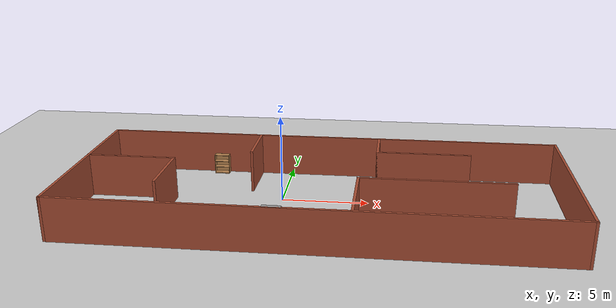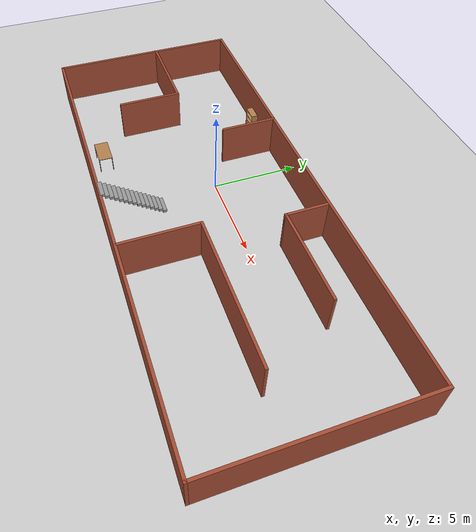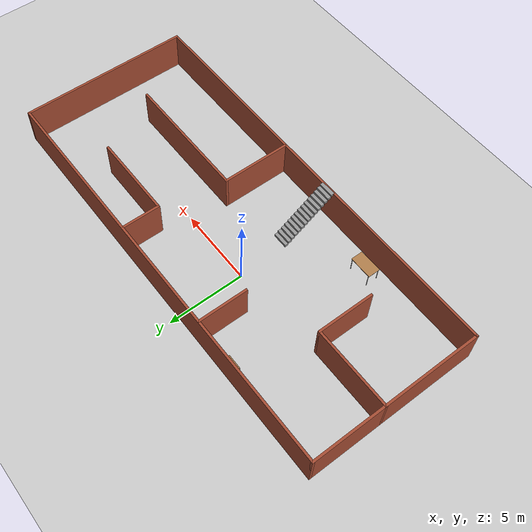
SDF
<sdf version="1.7">
 <world name="default">
  <light name="sun" type="directional">
   <pose>0 0 10 0 -0 0</pose>
   <diffuse>0.8 0.8 0.8 1</diffuse>
   <specular>0.2 0.2 0.2 1</specular>
   <attenuation>
    <range>1000</range>
    <constant>0.9</constant>
    <linear>0.01</linear>
    <quadratic>0.001</quadratic>
   </attenuation>
   <direction>-0.5 0.1 -0.9</direction>
   <spot><inner_angle>0</inner_angle><outer_angle>0</outer_angle><falloff>0</falloff></spot>
  </light>
  <model name="ground_plane">
   <static>1</static>
   <link name="link">
    <collision name="collision">
     <geometry><plane><normal>0 0 1</normal><size>100 100</size></plane></geometry>
     <surface><friction><ode><mu>100</mu><mu2>50</mu2></ode></friction></surface>
    </collision>
    <visual name="visual">
     <cast_shadows>0</cast_shadows>
     <geometry><plane><normal>0 0 1</normal><size>100 100</size></plane></geometry>
     <material>
      <script><uri>file://media/materials/scripts/gazebo.material</uri><name>Gazebo/Grey</name></script>
     </material>
    </visual>
   </link>
  </model>
  <gravity>0 0 -9.8</gravity>
  <magnetic_field>6e-06 2.3e-05 -4.2e-05</magnetic_field>
  <atmosphere type="adiabatic"/>
  <physics type="ode">
   <max_step_size>0.001</max_step_size>
   <real_time_factor>1</real_time_factor>
   <real_time_update_rate>1000</real_time_update_rate>
  </physics>
  <scene><ambient>0.4 0.4 0.4 1</ambient><background>0.7 0.7 0.7 1</background><shadows>1</shadows></scene>
  <audio><device>default</device></audio>
  <spherical_coordinates>
   <surface_model>EARTH_WGS84</surface_model>
   <latitude_deg>0</latitude_deg>
   <longitude_deg>0</longitude_deg>
   <elevation>0</elevation>
   <heading_deg>0</heading_deg>
  </spherical_coordinates>
  <model name="room">
   <pose>2.34999 -1.2148 0 0 -0 0</pose>
   <link name="Stairs_0">
    <visual name="Stairs_0_Visual_0">
     <pose>-1.80242 -2.16359 0.083333 0 -0 0</pose>
     <geometry><box><size>1 0.233333 0.166667</size></box></geometry>
     <material>
      <script><uri>file://media/materials/scripts/gazebo.material</uri><name>Gazebo/Grey</name></script>
      <ambient>1 1 1 1</ambient>
     </material>
     <meta><layer>0</layer></meta>
    </visual>
    <collision name="Stairs_0_Collision_0">
     <geometry><box><size>1 0.233333 0.166667</size></box></geometry>
     <pose>-1.80242 -2.16359 0.083333 0 -0 0</pose>
    </collision>
    <visual name="Stairs_0_Visual_1">
     <pose>-1.80242 -2.39692 0.25 0 -0 0</pose>
     <geometry><box><size>1 0.233333 0.166667</size></box></geometry>
     <material>
      <script><uri>file://media/materials/scripts/gazebo.material</uri><name>Gazebo/Grey</name></script>
      <ambient>1 1 1 1</ambient>
     </material>
     <meta><layer>0</layer></meta>
    </visual>
    <collision name="Stairs_0_Collision_1">
     <geometry><box><size>1 0.233333 0.166667</size></box></geometry>
     <pose>-1.80242 -2.39692 0.25 0 -0 0</pose>
    </collision>
    <visual name="Stairs_0_Visual_2">
     <pose>-1.80242 -2.63026 0.416667 0 -0 0</pose>
     <geometry><box><size>1 0.233333 0.166667</size></box></geometry>
     <material>
      <script><uri>file://media/materials/scripts/gazebo.material</uri><name>Gazebo/Grey</name></script>
      <ambient>1 1 1 1</ambient>
     </material>
     <meta><layer>0</layer></meta>
    </visual>
    <collision name="Stairs_0_Collision_2">
     <geometry><box><size>1 0.233333 0.166667</size></box></geometry>
     <pose>-1.80242 -2.63026 0.416667 0 -0 0</pose>
    </collision>
    <visual name="Stairs_0_Visual_3">
     <pose>-1.80242 -2.86359 0.583333 0 -0 0</pose>
     <geometry><box><size>1 0.233333 0.166667</size></box></geometry>
     <material>
      <script><uri>file://media/materials/scripts/gazebo.material</uri><name>Gazebo/Grey</name></script>
      <ambient>1 1 1 1</ambient>
     </material>
     <meta><layer>0</layer></meta>
    </visual>
    <collision name="Stairs_0_Collision_3">
     <geometry><box><size>1 0.233333 0.166667</size></box></geometry>
     <pose>-1.80242 -2.86359 0.583333 0 -0 0</pose>
    </collision>
    <visual name="Stairs_0_Visual_4">
     <pose>-1.80242 -3.09692 0.75 0 -0 0</pose>
     <geometry><box><size>1 0.233333 0.166667</size></box></geometry>
     <material>
      <script><uri>file://media/materials/scripts/gazebo.material</uri><name>Gazebo/Grey</name></script>
      <ambient>1 1 1 1</ambient>
     </material>
     <meta><layer>0</layer></meta>
    </visual>
    <collision name="Stairs_0_Collision_4">
     <geometry><box><size>1 0.233333 0.166667</size></box></geometry>
     <pose>-1.80242 -3.09692 0.75 0 -0 0</pose>
    </collision>
    <visual name="Stairs_0_Visual_5">
     <pose>-1.80242 -3.33026 0.916667 0 -0 0</pose>
     <geometry><box><size>1 0.233333 0.166667</size></box></geometry>
     <material>
      <script><uri>file://media/materials/scripts/gazebo.material</uri><name>Gazebo/Grey</name></script>
      <ambient>1 1 1 1</ambient>
     </material>
     <meta><layer>0</layer></meta>
    </visual>
    <collision name="Stairs_0_Collision_5">
     <geometry><box><size>1 0.233333 0.166667</size></box></geometry>
     <pose>-1.80242 -3.33026 0.916667 0 -0 0</pose>
    </collision>
    <visual name="Stairs_0_Visual_6">
     <pose>-1.80242 -3.56359 1.08333 0 -0 0</pose>
     <geometry><box><size>1 0.233333 0.166667</size></box></geometry>
     <material>
      <script><uri>file://media/materials/scripts/gazebo.material</uri><name>Gazebo/Grey</name></script>
      <ambient>1 1 1 1</ambient>
     </material>
     <meta><layer>0</layer></meta>
    </visual>
    <collision name="Stairs_0_Collision_6">
     <geometry><box><size>1 0.233333 0.166667</size></box></geometry>
     <pose>-1.80242 -3.56359 1.08333 0 -0 0</pose>
    </collision>
    <visual name="Stairs_0_Visual_7">
     <pose>-1.80242 -3.79692 1.25 0 -0 0</pose>
     <geometry><box><size>1 0.233333 0.166667</size></box></geometry>
     <material>
      <script><uri>file://media/materials/scripts/gazebo.material</uri><name>Gazebo/Grey</name></script>
      <ambient>1 1 1 1</ambient>
     </material>
     <meta><layer>0</layer></meta>
    </visual>
    <collision name="Stairs_0_Collision_7">
     <geometry><box><size>1 0.233333 0.166667</size></box></geometry>
     <pose>-1.80242 -3.79692 1.25 0 -0 0</pose>
    </collision>
    <visual name="Stairs_0_Visual_8">
     <pose>-1.80242 -4.03026 1.41667 0 -0 0</pose>
     <geometry><box><size>1 0.233333 0.166667</size></box></geometry>
     <material>
      <script><uri>file://media/materials/scripts/gazebo.material</uri><name>Gazebo/Grey</name></script>
      <ambient>1 1 1 1</ambient>
     </material>
     <meta><layer>0</layer></meta>
    </visual>
    <collision name="Stairs_0_Collision_8">
     <geometry><box><size>1 0.233333 0.166667</size></box></geometry>
     <pose>-1.80242 -4.03026 1.41667 0 -0 0</pose>
    </collision>
    <visual name="Stairs_0_Visual_9">
     <pose>-1.80242 -4.26359 1.58333 0 -0 0</pose>
     <geometry><box><size>1 0.233333 0.166667</size></box></geometry>
     <material>
      <script><uri>file://media/materials/scripts/gazebo.material</uri><name>Gazebo/Grey</name></script>
      <ambient>1 1 1 1</ambient>
     </material>
     <meta><layer>0</layer></meta>
    </visual>
    <collision name="Stairs_0_Collision_9">
     <geometry><box><size>1 0.233333 0.166667</size></box></geometry>
     <pose>-1.80242 -4.26359 1.58333 0 -0 0</pose>
    </collision>
    <visual name="Stairs_0_Visual_10">
     <pose>-1.80242 -4.49692 1.75 0 -0 0</pose>
     <geometry><box><size>1 0.233333 0.166667</size></box></geometry>
     <material>
      <script><uri>file://media/materials/scripts/gazebo.material</uri><name>Gazebo/Grey</name></script>
      <ambient>1 1 1 1</ambient>
     </material>
     <meta><layer>0</layer></meta>
    </visual>
    <collision name="Stairs_0_Collision_10">
     <geometry><box><size>1 0.233333 0.166667</size></box></geometry>
     <pose>-1.80242 -4.49692 1.75 0 -0 0</pose>
    </collision>
    <visual name="Stairs_0_Visual_11">
     <pose>-1.80242 -4.73026 1.91667 0 -0 0</pose>
     <geometry><box><size>1 0.233333 0.166667</size></box></geometry>
     <material>
      <script><uri>file://media/materials/scripts/gazebo.material</uri><name>Gazebo/Grey</name></script>
      <ambient>1 1 1 1</ambient>
     </material>
     <meta><layer>0</layer></meta>
    </visual>
    <collision name="Stairs_0_Collision_11">
     <geometry><box><size>1 0.233333 0.166667</size></box></geometry>
     <pose>-1.80242 -4.73026 1.91667 0 -0 0</pose>
    </collision>
    <visual name="Stairs_0_Visual_12">
     <pose>-1.80242 -4.96359 2.08333 0 -0 0</pose>
     <geometry><box><size>1 0.233333 0.166667</size></box></geometry>
     <material>
      <script><uri>file://media/materials/scripts/gazebo.material</uri><name>Gazebo/Grey</name></script>
      <ambient>1 1 1 1</ambient>
     </material>
     <meta><layer>0</layer></meta>
    </visual>
    <collision name="Stairs_0_Collision_12">
     <geometry><box><size>1 0.233333 0.166667</size></box></geometry>
     <pose>-1.80242 -4.96359 2.08333 0 -0 0</pose>
    </collision>
    <visual name="Stairs_0_Visual_13">
     <pose>-1.80242 -5.19692 2.25 0 -0 0</pose>
     <geometry><box><size>1 0.233333 0.166667</size></box></geometry>
     <material>
      <script><uri>file://media/materials/scripts/gazebo.material</uri><name>Gazebo/Grey</name></script>
      <ambient>1 1 1 1</ambient>
     </material>
     <meta><layer>0</layer></meta>
    </visual>
    <collision name="Stairs_0_Collision_13">
     <geometry><box><size>1 0.233333 0.166667</size></box></geometry>
     <pose>-1.80242 -5.19692 2.25 0 -0 0</pose>
    </collision>
    <visual name="Stairs_0_Visual_14">
     <pose>-1.80242 -5.43026 2.41667 0 -0 0</pose>
     <geometry><box><size>1 0.233333 0.166667</size></box></geometry>
     <material>
      <script><uri>file://media/materials/scripts/gazebo.material</uri><name>Gazebo/Grey</name></script>
      <ambient>1 1 1 1</ambient>
     </material>
     <meta><layer>0</layer></meta>
    </visual>
    <collision name="Stairs_0_Collision_14">
     <geometry><box><size>1 0.233333 0.166667</size></box></geometry>
     <pose>-1.80242 -5.43026 2.41667 0 -0 0</pose>
    </collision>
   </link>
   <link name="Wall_11">
    <collision name="Wall_11_Collision">
     <geometry><box><size>11.25 0.15 2.5</size></box></geometry>
     <pose>0 0 1.25 0 -0 0</pose>
    </collision>
    <visual name="Wall_11_Visual">
     <pose>0 0 1.25 0 -0 0</pose>
     <geometry><box><size>11.25 0.15 2.5</size></box></geometry>
     <material>
      <script><uri>file://media/materials/scripts/gazebo.material</uri><name>Gazebo/Bricks</name></script>
      <ambient>1 1 1 1</ambient>
     </material>
     <meta><layer>0</layer></meta>
    </visual>
    <pose>-13.675 -0 0 0 -0 -1.5708</pose>
   </link>
   <link name="Wall_13">
    <collision name="Wall_13_Collision">
     <geometry><box><size>27.5 0.15 2.5</size></box></geometry>
     <pose>0 0 1.25 0 -0 0</pose>
    </collision>
    <visual name="Wall_13_Visual">
     <pose>0 0 1.25 0 -0 0</pose>
     <geometry><box><size>27.5 0.15 2.5</size></box></geometry>
     <material>
      <script><uri>file://media/materials/scripts/gazebo.material</uri><name>Gazebo/Bricks</name></script>
      <ambient>1 1 1 1</ambient>
     </material>
     <meta><layer>0</layer></meta>
    </visual>
    <pose>0 -5.55 0 0 -0 0</pose>
   </link>
   <link name="Wall_15">
    <collision name="Wall_15_Collision">
     <geometry><box><size>27.5 0.15 2.5</size></box></geometry>
     <pose>0 0 1.25 0 -0 0</pose>
    </collision>
    <visual name="Wall_15_Visual">
     <pose>0 0 1.25 0 -0 0</pose>
     <geometry><box><size>27.5 0.15 2.5</size></box></geometry>
     <material>
      <script><uri>file://media/materials/scripts/gazebo.material</uri><name>Gazebo/Bricks</name></script>
      <ambient>1 1 1 1</ambient>
     </material>
     <meta><layer>0</layer></meta>
    </visual>
    <pose>0 5.55 0 0 -0 0</pose>
   </link>
   <link name="Wall_16">
    <collision name="Wall_16_Collision">
     <geometry><box><size>11.25 0.15 2.5</size></box></geometry>
     <pose>0 0 1.25 0 -0 0</pose>
    </collision>
    <visual name="Wall_16_Visual">
     <pose>0 0 1.25 0 -0 0</pose>
     <geometry><box><size>11.25 0.15 2.5</size></box></geometry>
     <material>
      <script><uri>file://media/materials/scripts/gazebo.material</uri><name>Gazebo/Bricks</name></script>
      <ambient>1 1 1 1</ambient>
     </material>
     <meta><layer>0</layer></meta>
    </visual>
    <pose>13.675 -0 0 0 -0 -1.5708</pose>
   </link>
   <link name="Wall_18">
    <collision name="Wall_18_Collision">
     <geometry><box><size>5.25 0.15 2.5</size></box></geometry>
     <pose>0 0 1.25 0 -0 0</pose>
    </collision>
    <visual name="Wall_18_Visual">
     <pose>0 0 1.25 0 -0 0</pose>
     <geometry><box><size>5.25 0.15 2.5</size></box></geometry>
     <material>
      <script><uri>file://media/materials/scripts/gazebo.material</uri><name>Gazebo/Bricks</name></script>
      <ambient>1 1 1 1</ambient>
     </material>
     <meta><layer>0</layer></meta>
    </visual>
    <pose>-11.125 0.836764 0 0 -0 0</pose>
   </link>
   <link name="Wall_19">
    <collision name="Wall_19_Collision">
     <geometry><box><size>3.75 0.15 2.5</size></box></geometry>
     <pose>0 0 1.25 0 -0 0</pose>
    </collision>
    <visual name="Wall_19_Visual">
     <pose>0 0 1.25 0 -0 0</pose>
     <geometry><box><size>3.75 0.15 2.5</size></box></geometry>
     <material>
      <script><uri>file://media/materials/scripts/gazebo.material</uri><name>Gazebo/Bricks</name></script>
      <ambient>1 1 1 1</ambient>
     </material>
     <meta><layer>0</layer></meta>
    </visual>
    <pose>-8.575 -0.963236 0 0 -0 -1.5708</pose>
   </link>
   <link name="Wall_21">
    <collision name="Wall_21_Collision">
     <geometry><box><size>2.5 0.15 2.5</size></box></geometry>
     <pose>0 0 1.25 0 -0 0</pose>
    </collision>
    <visual name="Wall_21_Visual">
     <pose>0 0 1.25 0 -0 0</pose>
     <geometry><box><size>2.5 0.15 2.5</size></box></geometry>
     <material>
      <script><uri>file://media/materials/scripts/gazebo.material</uri><name>Gazebo/Bricks</name></script>
      <ambient>1 1 1 1</ambient>
     </material>
     <meta><layer>0</layer></meta>
    </visual>
    <pose>3.06991 4.27557 0 0 -0 -1.5708</pose>
   </link>
   <link name="Wall_22">
    <collision name="Wall_22_Collision">
     <geometry><box><size>5.5 0.15 2.5</size></box></geometry>
     <pose>0 0 1.25 0 -0 0</pose>
    </collision>
    <visual name="Wall_22_Visual">
     <pose>0 0 1.25 0 -0 0</pose>
     <geometry><box><size>5.5 0.15 2.5</size></box></geometry>
     <material>
      <script><uri>file://media/materials/scripts/gazebo.material</uri><name>Gazebo/Bricks</name></script>
      <ambient>1 1 1 1</ambient>
     </material>
     <meta><layer>0</layer></meta>
    </visual>
    <pose>5.74491 3.10057 0 0 -0 0</pose>
   </link>
   <link name="Wall_24">
    <collision name="Wall_24_Collision">
     <geometry><box><size>4.5 0.15 2.5</size></box></geometry>
     <pose>0 0 1.25 0 -0 0</pose>
    </collision>
    <visual name="Wall_24_Visual">
     <pose>0 0 1.25 0 -0 0</pose>
     <geometry><box><size>4.5 0.15 2.5</size></box></geometry>
     <material>
      <script><uri>file://media/materials/scripts/gazebo.material</uri><name>Gazebo/Bricks</name></script>
      <ambient>1 1 1 1</ambient>
     </material>
     <meta><layer>0</layer></meta>
    </visual>
    <pose>2.19488 -3.28717 0 0 -0 -1.5708</pose>
   </link>
   <link name="Wall_26">
    <collision name="Wall_26_Collision">
     <geometry><box><size>8.5 0.15 2.5</size></box></geometry>
     <pose>0 0 1.25 0 -0 0</pose>
    </collision>
    <visual name="Wall_26_Visual">
     <pose>0 0 1.25 0 -0 0</pose>
     <geometry><box><size>8.5 0.15 2.5</size></box></geometry>
     <material>
      <script><uri>file://media/materials/scripts/gazebo.material</uri><name>Gazebo/Bricks</name></script>
      <ambient>1 1 1 1</ambient>
     </material>
     <meta><layer>0</layer></meta>
    </visual>
    <pose>6.36988 -1.11217 0 0 -0 0</pose>
   </link>
   <link name="Wall_28">
    <collision name="Wall_28_Collision">
     <geometry><box><size>3.25 0.15 2.5</size></box></geometry>
     <pose>0 0 1.25 0 -0 0</pose>
    </collision>
    <visual name="Wall_28_Visual">
     <pose>0 0 1.25 0 -0 0</pose>
     <geometry><box><size>3.25 0.15 2.5</size></box></geometry>
     <material>
      <script><uri>file://media/materials/scripts/gazebo.material</uri><name>Gazebo/Bricks</name></script>
      <ambient>1 1 1 1</ambient>
     </material>
     <meta><layer>0</layer></meta>
    </visual>
    <pose>-4.30819 3.96023 0 0 -0 -1.5708</pose>
   </link>
   <static>1</static>
  </model>
  <model name="bookshelf">
   <static>1</static>
   <link name="link">
    <inertial><mass>1</mass></inertial>
    <collision name="back">
     <pose>0 0.005 0.6 0 -0 0</pose>
     <geometry><box><size>0.9 0.01 1.2</size></box></geometry>
    </collision>
    <visual name="visual1">
     <pose>0 0.005 0.6 0 -0 0</pose>
     <geometry><box><size>0.9 0.01 1.2</size></box></geometry>
     <material>
      <script><uri>file://media/materials/scripts/gazebo.material</uri><name>Gazebo/Wood</name></script>
     </material>
    </visual>
    <collision name="left_side">
     <pose>0.45 -0.195 0.6 0 -0 0</pose>
     <geometry><box><size>0.02 0.4 1.2</size></box></geometry>
    </collision>
    <visual name="visual2">
     <pose>0.45 -0.195 0.6 0 -0 0</pose>
     <geometry><box><size>0.02 0.4 1.2</size></box></geometry>
     <material>
      <script><uri>file://media/materials/scripts/gazebo.material</uri><name>Gazebo/Wood</name></script>
     </material>
    </visual>
    <collision name="right_side">
     <pose>-0.45 -0.195 0.6 0 -0 0</pose>
     <geometry><box><size>0.02 0.4 1.2</size></box></geometry>
    </collision>
    <visual name="visual3">
     <pose>-0.45 -0.195 0.6 0 -0 0</pose>
     <geometry><box><size>0.02 0.4 1.2</size></box></geometry>
     <material>
      <script><uri>file://media/materials/scripts/gazebo.material</uri><name>Gazebo/Wood</name></script>
     </material>
    </visual>
    <collision name="bottom">
     <pose>0 -0.195 0.03 0 -0 0</pose>
     <geometry><box><size>0.88 0.4 0.06</size></box></geometry>
    </collision>
    <visual name="visual4">
     <pose>0 -0.195 0.03 0 -0 0</pose>
     <geometry><box><size>0.88 0.4 0.06</size></box></geometry>
     <material>
      <script><uri>file://media/materials/scripts/gazebo.material</uri><name>Gazebo/Wood</name></script>
     </material>
    </visual>
    <collision name="top">
     <pose>0 -0.195 1.19 0 -0 0</pose>
     <geometry><box><size>0.88 0.4 0.02</size></box></geometry>
    </collision>
    <visual name="visual5">
     <pose>0 -0.195 1.19 0 -0 0</pose>
     <geometry><box><size>0.88 0.4 0.02</size></box></geometry>
     <material>
      <script><uri>file://media/materials/scripts/gazebo.material</uri><name>Gazebo/Wood</name></script>
     </material>
    </visual>
    <collision name="low_shelf">
     <pose>0 -0.195 0.43 0 -0 0</pose>
     <geometry><box><size>0.88 0.4 0.02</size></box></geometry>
    </collision>
    <visual name="visual6">
     <pose>0 -0.195 0.43 0 -0 0</pose>
     <geometry><box><size>0.88 0.4 0.02</size></box></geometry>
     <material>
      <script><uri>file://media/materials/scripts/gazebo.material</uri><name>Gazebo/Wood</name></script>
     </material>
    </visual>
    <collision name="high_shelf">
     <pose>0 -0.195 0.8 0 -0 0</pose>
     <geometry><box><size>0.88 0.4 0.02</size></box></geometry>
    </collision>
    <visual name="visual7">
     <pose>0 -0.195 0.8 0 -0 0</pose>
     <geometry><box><size>0.88 0.4 0.02</size></box></geometry>
     <material>
      <script><uri>file://media/materials/scripts/gazebo.material</uri><name>Gazebo/Wood</name></script>
     </material>
    </visual>
   </link>
   <pose>-4.46203 4.23099 0 0 -0 0</pose>
  </model>
  <model name="table">
   <static>1</static>
   <link name="link">
    <collision name="surface">
     <pose>0 0 1 0 -0 0</pose>
     <geometry><box><size>1.5 0.8 0.03</size></box></geometry>
     <surface><friction><ode><mu>0.6</mu><mu2>0.6</mu2></ode></friction></surface>
    </collision>
    <visual name="visual1">
     <pose>0 0 1 0 -0 0</pose>
     <geometry><box><size>1.5 0.8 0.03</size></box></geometry>
     <material>
      <script><uri>file://media/materials/scripts/gazebo.material</uri><name>Gazebo/Wood</name></script>
     </material>
    </visual>
    <collision name="front_left_leg_collision">
     <pose>0.68 0.38 0.5 0 -0 0</pose>
     <geometry><cylinder><radius>0.02</radius><length>1</length></cylinder></geometry>
    </collision>
    <visual name="front_left_leg_visual">
     <pose>0.68 0.38 0.5 0 -0 0</pose>
     <geometry><cylinder><radius>0.02</radius><length>1</length></cylinder></geometry>
     <material>
      <script><uri>file://media/materials/scripts/gazebo.material</uri><name>Gazebo/Grey</name></script>
     </material>
    </visual>
    <collision name="front_right_leg_collision">
     <pose>0.68 -0.38 0.5 0 -0 0</pose>
     <geometry><cylinder><radius>0.02</radius><length>1</length></cylinder></geometry>
    </collision>
    <visual name="front_right_leg_visual">
     <pose>0.68 -0.38 0.5 0 -0 0</pose>
     <geometry><cylinder><radius>0.02</radius><length>1</length></cylinder></geometry>
     <material>
      <script><uri>file://media/materials/scripts/gazebo.material</uri><name>Gazebo/Grey</name></script>
     </material>
    </visual>
    <collision name="back_right_leg_collision">
     <pose>-0.68 -0.38 0.5 0 -0 0</pose>
     <geometry><cylinder><radius>0.02</radius><length>1</length></cylinder></geometry>
    </collision>
    <visual name="back_right_leg_visual">
     <pose>-0.68 -0.38 0.5 0 -0 0</pose>
     <geometry><cylinder><radius>0.02</radius><length>1</length></cylinder></geometry>
     <material>
      <script><uri>file://media/materials/scripts/gazebo.material</uri><name>Gazebo/Grey</name></script>
     </material>
    </visual>
    <collision name="back_left_leg_collision">
     <pose>-0.68 0.38 0.5 0 -0 0</pose>
     <geometry><cylinder><radius>0.02</radius><length>1</length></cylinder></geometry>
    </collision>
    <visual name="back_left_leg_visual">
     <pose>-0.68 0.38 0.5 0 -0 0</pose>
     <geometry><cylinder><radius>0.02</radius><length>1</length></cylinder></geometry>
     <material>
      <script><uri>file://media/materials/scripts/gazebo.material</uri><name>Gazebo/Grey</name></script>
     </material>
    </visual>
   </link>
   <pose>-4.05243 -5.75863 0 0 -0 0</pose>
  </model>
 </world>
</sdf>
